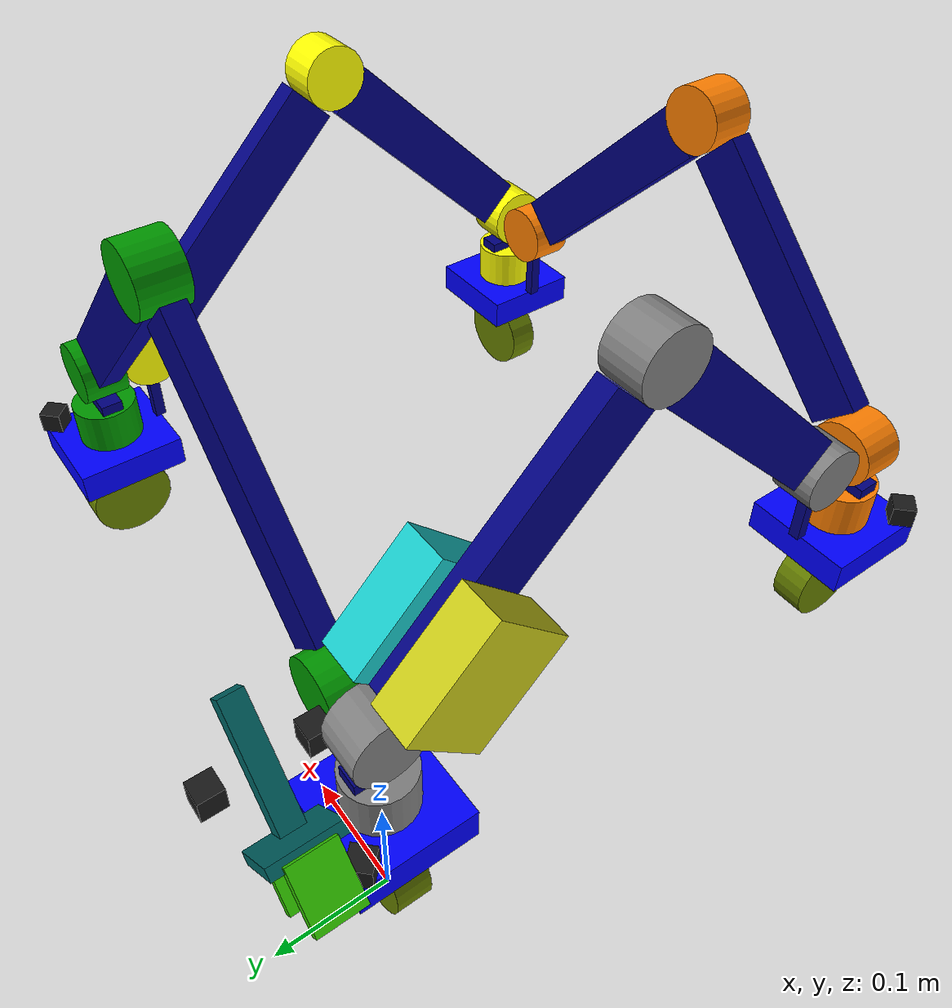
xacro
<?xml version="1.0"?>
<robot xmlns:xacro="http://www.ros.org/wiki/xacro" name="my_robot">
    <xacro:arg name="initial_positions_file" default="initial_positions.yaml" />

    <!-- Import my_robot urdf file -->
    <xacro:include filename="$(find my_robot_description)/urdf/four_arm_robot.xml.xacro" />

    <!-- Import control_xacro -->
    <xacro:include filename="my_robot.ros2_control.xacro" />

    <xacro:my_robot_ros2_control name="FakeSystem" initial_positions_file="$(arg initial_positions_file)"/>

</robot>

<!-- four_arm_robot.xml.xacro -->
<robot name="my_robot" xmlns:xacro="http://www.ros.org/wiki/xacro">

    <xacro:include filename="far_common_properties.xml.xacro" />
    <xacro:include filename="main_arm_units.xml.xacro" />
    <xacro:include filename="mobile_base_part.xml.xacro" />
    <xacro:include filename="branch_arm_unit.xml.xacro" />
    <xacro:include filename="unit_camera.xml.xacro" />
    <xacro:include filename="stereo_camera.xml.xacro" />

    <xacro:include filename="my_robot.ros2_control.xacro" />

    <link name="base_footprint" />

    <joint name="base_joint" type="fixed">
        <parent link="base_footprint" />
        <child link="arm_base_link_1" />
        <origin xyz="0 0 ${wheel_radius*2+veer_height+arm_base_height/2}" rpy="0 0 0" />
    </joint>

    <xacro:macro name="arm_veer_joint" params="prefix">
        <joint name="arm_veer_joint_${prefix}" type="revolute">
            <parent link="arm_base_link_${prefix}" />
            <child link="veer_link_${prefix}" />
            <origin xyz="0 0 -${arm_base_height/2}" rpy="0 0 0" />
            <axis xyz="0 0 1"/>
            <limit lower="${-pi}" upper="${pi}" effort="100" velocity="1.0"/>
            <dynamics friction="0.1" damping="0.1" />
        </joint>
    </xacro:macro>

    <xacro:arm_veer_joint prefix="1" />
    <xacro:arm_veer_joint prefix="2" />
    <xacro:arm_veer_joint prefix="3" />
    <xacro:arm_veer_joint prefix="4" />

    <xacro:macro name="branch_joint" params="prefix">
        <joint name="branch_joint_${prefix}" type="fixed">
            <parent link="arm_part_6_${prefix}" />
            <child link="branch_arm_link_${prefix}" />
            <origin xyz="0 ${arm_link_3_width/2+branch_arm_link_width/2+0.05} ${arm_link_3_height+arm_joint_3_radius}" rpy="0 0 0" />
        </joint>
    </xacro:macro>

    <xacro:branch_joint prefix="4" />

    <xacro:macro name="camera_mount_joint" params="prefix">
        <joint name="camera_joint_${prefix}" type="fixed">
            <parent link="arm_base_link_${prefix}" />
            <child link="camera_link_${prefix}" />
            <origin xyz="-${arm_base_length/2-camera_length/2} ${arm_base_width/2-camera_width/2} ${arm_base_height/2+camera_height/2}" rpy="0 0 ${pi*3.0/4.0}" />
        </joint>
    </xacro:macro>

    <xacro:camera_unit prefix="1" />
    <xacro:camera_mount_joint prefix="1" />

    <xacro:camera_unit prefix="2" />
    <xacro:camera_mount_joint prefix="2" />

    <xacro:camera_unit prefix="3" />
    <xacro:camera_mount_joint prefix="3" />

    <xacro:camera_unit prefix="4" />
    <xacro:camera_mount_joint prefix="4" />

    <gazebo>
        <plugin filename="libgz_ros2_control-system.so" name="gz_ros2_control::GazeboSimROS2ControlPlugin">
            <parameters>$(find my_robot_bringup)/config/ros2_controllers.yaml</parameters>
        </plugin>
        <!-- Publish odom->base_footprint TF so the robot moves in RViz -->
        <plugin filename="gz-sim-odometry-publisher-system" name="gz::sim::systems::OdometryPublisher">
            <odom_frame>odom</odom_frame>
            <robot_base_frame>base_footprint</robot_base_frame>
            <dimensions>2</dimensions>
        </plugin>
    </gazebo>
</robot>

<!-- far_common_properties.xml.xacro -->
<robot  xmlns:xacro="http://www.ros.org/wiki/xacro">
    <material name="link_common_color">
        <color rgba=" 0 0 0.5 1" />
    </material>
    <material name="base_link_color">
        <color rgba=" 0 0 1 1" />
    </material>
    <material name="joint_group_color_1">
        <color rgba="0.5 0.5 0.5 1" />
    </material>

    <material name="joint_group_color_2">
        <color rgba="1 0.5 0 1" />
    </material>

    <material name="joint_group_color_3">
        <color rgba="1 1 0 1" />
    </material>

    <material name="joint_group_color_4">
        <color rgba="0 0.6 0 1" />
    </material>
    <material name="wheel_joint_color">
        <color rgba="0 0.4 0 1" />
    </material>
    <material name="wheel_color">
        <color rgba="0.4 0.5 0 1" />
    </material>
    <material name="branch_link_color">
        <color rgba="0 0.4 0.4 1" />
    </material>
    <material name="gripper_color">
        <color rgba="0.2 0.8 0 1" />
    </material>
    <material name="battery_color">
        <color rgba="0.8 0.8 0.1 1" />
    </material>
    <material name="controller_color">
        <color rgba="0.1 0.8 0.8 1" />
    </material>
    <material name="camera_color">
        <color rgba="0.1 0.1 0.1 1" />
    </material>

    <xacro:property name="battery_length" value="0.08" />
    <xacro:property name="battery_width" value="0.04" />
    <xacro:property name="battery_height" value="0.1" />

    <xacro:property name="controller_length" value="0.08" />
    <xacro:property name="controller_width" value="0.04" />
    <xacro:property name="controller_height" value="0.1" />

    <xacro:property name="arm_base_length" value="0.1" />
    <xacro:property name="arm_base_width" value="0.1" />
    <xacro:property name="arm_base_height" value="0.03" />

    <xacro:property name="veer_length" value="0.04" />
    <xacro:property name="veer_width" value="0.02" />
    <xacro:property name="veer_height" value="0.01" />

    <xacro:property name="wheel_radius" value="0.04" />
    <xacro:property name="wheel_length" value="0.03" />

    <xacro:property name="arm_joint_1_radius" value="0.03" />
    <xacro:property name="arm_joint_1_length" value="0.04" />

    <xacro:property name="arm_link_1_length" value="0.05" />
    <xacro:property name="arm_link_1_width" value="0.02" />
    <xacro:property name="arm_link_1_height" value="0.01" />

    <xacro:property name="arm_joint_2_radius" value="0.03" />
    <xacro:property name="arm_joint_2_length" value="0.04" />

    <xacro:property name="arm_link_2_length" value="0.05" />
    <xacro:property name="arm_link_2_width" value="0.02" />
    <xacro:property name="arm_link_2_height" value="0.25" />

    <xacro:property name="arm_joint_3_radius" value="0.03" />
    <xacro:property name="arm_joint_3_length" value="0.04" />

    <xacro:property name="arm_link_3_length" value="0.05" />
    <xacro:property name="arm_link_3_width" value="0.02" />
    <xacro:property name="arm_link_3_height" value="0.25" />

    <xacro:property name="arm_joint_4_radius" value="0.03" />
    <xacro:property name="arm_joint_4_length" value="0.04" />

    <xacro:property name="branch_arm_link_length" value="0.02" />
    <xacro:property name="branch_arm_link_width" value="0.02" />
    <xacro:property name="branch_arm_link_height" value="0.1" />

    <xacro:property name="branch_cameras_link_length" value="0.1" />
    <xacro:property name="branch_cameras_link_width" value="0.05" />
    <xacro:property name="branch_cameras_link_height" value="0.05" />

    <xacro:property name="branch_camera_link_length" value="0.1" />
    <xacro:property name="branch_camera_link_width" value="0.05" />
    <xacro:property name="branch_camera_link_height" value="0.05" />

    <xacro:property name="connecter_link_length" value="0.06" />
    <xacro:property name="connecter_link_width" value="0.06" />
    <xacro:property name="connecter_link_height" value="0.01" />

    <xacro:property name="gripper_link_length" value="0.01" />
    <xacro:property name="gripper_link_width" value="0.04" />
    <xacro:property name="gripper_link_height" value="0.05" />

     <xacro:property name="camera_length" value="0.02" />
     <xacro:property name="camera_width" value="0.02" />
     <xacro:property name="camera_height" value="0.02" />
     <xacro:property name="camera_mass" value="0.02" />
     <xacro:property name="camera_optical_size" value="0.005" />

    <xacro:macro name="box_inertia" params="m x y z o_xyz o_rpy">
        <inertial>
            <mass value="${m}" />
            <origin xyz="${o_xyz}" rpy="${o_rpy}" />
            <inertia ixx="${(m)/12 *(y*y + z*z)}" ixy="0" ixz="0"
                    iyy="${(m)/12 *(x*x + z*z)}" iyz="0"
                    izz="${(m)/12 *(x*x + y*y)}" />
        </inertial>
    </xacro:macro>

    <xacro:macro name="cylinder_inertia" params="m r l o_xyz o_rpy">
        <inertial>
            <mass value="${m}" />
            <origin xyz="${o_xyz}" rpy="${o_rpy}" />
            <inertia ixx="${(m)/12 *(3*r*r + l*l)}" ixy="0" ixz="0"
                    iyy="${(m)/12 *(3*r*r + l*l)}" iyz="0"
                    izz="${(m)/2 *(r*r)}" />
        </inertial>
    </xacro:macro>

    <xacro:macro name="caster_inertia" params="m r o_xyz o_rpy">
        <inertial>
            <mass value="${m}" />
            <origin xyz="${o_xyz}" rpy="${o_rpy}" />
            <inertia ixx="${(2*m/5) *(r*r)}" ixy="0" ixz="0"
                    iyy="${(2*m/5) *(r*r)}" iyz="0"
                    izz="${(2*m/5) *(r*r)}" />
        </inertial>
    </xacro:macro>
</robot>

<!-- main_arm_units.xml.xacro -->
<robot xmlns:xacro="http://www.ros.org/wiki/xacro">
    <xacro:macro name="arm_base_link" params="prefix">
        <link name="arm_base_link_${prefix}">
            <visual>
                <geometry>
                    <box size="${arm_base_length} ${arm_base_width} ${arm_base_height}" />
                </geometry>
                <origin xyz="0 0 0" rpy="0 0 0" />
                <material name="base_link_color" />
            </visual>
            <collision>
                <geometry>
                    <box size="${arm_base_length} ${arm_base_width} ${arm_base_height}" />
                </geometry>
                <origin xyz="0 0 0" rpy="0 0 0" />
            </collision>
            <xacro:box_inertia m="0.5" x="${arm_base_length}" y="${arm_base_width}" z="${arm_base_height}"
                            o_xyz="0 0 0" o_rpy="0 0 0" />
        </link>
    </xacro:macro>

    <xacro:macro name="arm_part_1" params="prefix">
        <link name="arm_part_1_${prefix}">
            <visual>
                <geometry>
                    <cylinder radius="${arm_joint_1_radius}" length="${arm_joint_1_length}" />
                </geometry>
                <origin xyz="0 0 ${arm_joint_1_length/2}" rpy="0 0 0" />
                <material name="joint_group_color_${prefix}" />
            </visual>
            <collision>
                <geometry>
                    <cylinder radius="${arm_joint_1_radius}" length="${arm_joint_1_length}" />
                </geometry>
                <origin xyz="0 0 ${arm_joint_1_length/2}" rpy="0 0 0" />
            </collision>
            <xacro:cylinder_inertia m="2.0" r="${arm_joint_1_radius}" l="${arm_joint_1_length}"
                                o_xyz="0 0 ${arm_joint_1_length/2}" o_rpy="0 0 0"/>
        </link>
    </xacro:macro>

    <xacro:macro name="arm_part_2" params="prefix">
        <link name="arm_part_2_${prefix}">
            <visual>
                <geometry>
                    <box size="${arm_link_1_length} ${arm_link_1_width} ${arm_link_1_height}" />
                </geometry>
                <origin xyz="0 0 ${arm_link_1_height/2}" rpy="0 0 0" />
                <material name="link_common_color" />
            </visual>
            <collision>
                <geometry>
                    <box size="${arm_link_1_length} ${arm_link_1_width} ${arm_link_1_height}" />
                </geometry>
                <origin xyz="0 0 ${arm_link_1_height/2}" rpy="0 0 0" />
            </collision>
            <xacro:box_inertia m="0.5" x="${arm_link_1_length}" y="${arm_link_1_width}" z="${arm_link_1_height}"
                            o_xyz="0 0 ${arm_link_1_height/2}" o_rpy="0 0 0" />
        </link>
    </xacro:macro>

    <xacro:macro name="arm_part_3" params="prefix">
        <link name="arm_part_3_${prefix}">
            <visual>
                <geometry>
                    <cylinder radius="${arm_joint_2_radius}" length="${arm_joint_2_length}" />
                </geometry>
                <origin xyz="0 0 0" rpy="${pi / 2.0} 0 0" />
                <material name="joint_group_color_${prefix}" />
            </visual>
            <collision>
                <geometry>
                    <cylinder radius="${arm_joint_2_radius}" length="${arm_joint_2_length}" />
                </geometry>
                <origin xyz="0 0 0" rpy="${pi / 2.0} 0 0" />
            </collision>
            <xacro:cylinder_inertia m="2.0" r="${arm_joint_2_radius}" l="${arm_joint_2_length}"
                                o_xyz="0 0 0" o_rpy="${pi / 2.0} 0 0"/>
        </link>
    </xacro:macro>

    <xacro:macro name="arm_part_4" params="prefix">
        <link name="arm_part_4_${prefix}">
            <visual>
                <geometry>
                    <box size="${arm_link_2_length} ${arm_link_2_width} ${arm_link_2_height}" />
                </geometry>
                <origin xyz="0 0 ${arm_link_2_height/2+arm_joint_2_radius}" rpy="0 0 0" />
                <material name="link_common_color" />
            </visual>
            <collision>
                <geometry>
                    <box size="${arm_link_2_length} ${arm_link_2_width} ${arm_link_2_height}" />
                </geometry>
                <origin xyz="0 0 ${arm_link_2_height/2+arm_joint_2_radius}" rpy="0 0 0" />
            </collision>
            <xacro:box_inertia m="1.0" x="${arm_link_2_length}" y="${arm_link_2_width}" z="${arm_link_2_height}"
                            o_xyz="0 0 ${arm_link_2_height/2+arm_joint_2_radius}" o_rpy="0 0 0" />
        </link>
    </xacro:macro>

    <xacro:macro name="arm_part_5" params="prefix">
        <link name="arm_part_5_${prefix}">
            <visual>
                <geometry>
                    <cylinder radius="${arm_joint_3_radius}" length="${arm_joint_3_length}" />
                </geometry>
                <origin xyz="0 0 0" rpy="${pi / 2.0} 0 0" />
                <material name="joint_group_color_${prefix}" />
            </visual>
            <collision>
                <geometry>
                    <cylinder radius="${arm_joint_3_radius}" length="${arm_joint_3_length}" />
                </geometry>
                <origin xyz="0 0 0" rpy="${pi / 2.0} 0 0" />
            </collision>
            <xacro:cylinder_inertia m="2.0" r="${arm_joint_3_radius}" l="${arm_joint_3_length}"
                                o_xyz="0 0 0" o_rpy="${pi / 2.0} 0 0"/>
        </link>
    </xacro:macro>

    <xacro:macro name="arm_part_6" params="prefix">
        <link name="arm_part_6_${prefix}">
            <visual>
                <geometry>
                    <box size="${arm_link_3_length} ${arm_link_3_width} ${arm_link_3_height}" />
                </geometry>
                <origin xyz="0 0 ${arm_link_3_height/2+arm_joint_3_radius}" rpy="0 0 0" />
                <material name="link_common_color" />
            </visual>
            <collision>
                <geometry>
                    <box size="${arm_link_3_length} ${arm_link_3_width} ${arm_link_3_height}" />
                </geometry>
                <origin xyz="0 0 ${arm_link_3_height/2+arm_joint_3_radius}" rpy="0 0 0" />
            </collision>
            <xacro:box_inertia m="1.0" x="${arm_link_3_length}" y="${arm_link_3_width}" z="${arm_link_3_height}"
                            o_xyz="0 0 ${arm_link_3_height/2+arm_joint_3_radius}" o_rpy="0 0 0" />
        </link>
    </xacro:macro>

    <xacro:macro name="arm_part_7" params="prefix">
        <link name="arm_part_7_${prefix}">
            <visual>
                <geometry>
                    <cylinder radius="${arm_joint_4_radius}" length="${arm_joint_4_length}" />
                </geometry>
                <origin xyz="0 0 0" rpy="${pi / 2.0} 0 0" />
                <material name="joint_group_color_${prefix}" />
            </visual>
            <collision>
                <geometry>
                    <cylinder radius="${arm_joint_4_radius}" length="${arm_joint_4_length}" />
                </geometry>
                <origin xyz="0 0 0" rpy="${pi / 2.0} 0 0" />
            </collision>
            <xacro:cylinder_inertia m="2.0" r="${arm_joint_4_radius}" l="${arm_joint_4_length}"
                                o_xyz="0 0 0" o_rpy="${pi / 2.0} 0 0"/>
        </link>
    </xacro:macro>

    <xacro:macro name="arm_part_8" params="prefix">
        <link name="arm_part_8_${prefix}">
            <visual>
                <geometry>
                    <box size="${0.01} ${0.01} ${arm_joint_2_radius+arm_link_1_height+arm_joint_1_length}" />
                </geometry>
                <origin xyz="0 0 ${arm_joint_2_radius/2+arm_link_1_height/2+arm_joint_1_length/2}" rpy="0 0 0" />
                <material name="link_common_color" />
            </visual>
            <collision>
                <geometry>
                    <box size="${0.01} ${0.01} ${arm_joint_2_radius+arm_link_1_height+arm_joint_1_length}" />
                </geometry>
                <origin xyz="0 0 ${arm_joint_2_radius/2+arm_link_1_height/2+arm_joint_1_length/2}" rpy="0 0 0" />
            </collision>
            <xacro:box_inertia m="0.1" x="0.01" y="0.01" z="${arm_joint_2_radius+arm_link_1_height+arm_joint_1_length}"
                            o_xyz="0 0 ${arm_joint_2_radius/2+arm_link_1_height/2+arm_joint_1_length/2}" o_rpy="0 0 0" />
        </link>
    </xacro:macro>

    <xacro:arm_base_link prefix="1" />
    <xacro:arm_part_1 prefix="1" />
    <xacro:arm_part_2 prefix="1" />
    <xacro:arm_part_3 prefix="1" />
    <xacro:arm_part_4 prefix="1" />
    <xacro:arm_part_5 prefix="1" />
    <xacro:arm_part_6 prefix="1" />
    <xacro:arm_part_7 prefix="1" />
    <xacro:arm_part_8 prefix="1" />

    <xacro:arm_base_link prefix="2" />
    <xacro:arm_part_1 prefix="2" />
    <xacro:arm_part_2 prefix="2" />
    <xacro:arm_part_3 prefix="2" />
    <xacro:arm_part_4 prefix="2" />
    <xacro:arm_part_5 prefix="2" />
    <xacro:arm_part_6 prefix="2" />
    <xacro:arm_part_7 prefix="2" />
    <xacro:arm_part_8 prefix="2" />

    <xacro:arm_base_link prefix="3" />
    <xacro:arm_part_1 prefix="3" />
    <xacro:arm_part_2 prefix="3" />
    <xacro:arm_part_3 prefix="3" />
    <xacro:arm_part_4 prefix="3" />
    <xacro:arm_part_5 prefix="3" />
    <xacro:arm_part_6 prefix="3" />
    <xacro:arm_part_7 prefix="3" />
    <xacro:arm_part_8 prefix="3" />

    <xacro:arm_base_link prefix="4" />
    <xacro:arm_part_1 prefix="4" />
    <xacro:arm_part_2 prefix="4" />
    <xacro:arm_part_3 prefix="4" />
    <xacro:arm_part_4 prefix="4" />
    <xacro:arm_part_5 prefix="4" />
    <xacro:arm_part_6 prefix="4" />
    <xacro:arm_part_7 prefix="4" />
    <xacro:arm_part_8 prefix="4" />

    <xacro:macro name="arm_joint_1" params="prefix">
        <joint name="arm_joint_1_${prefix}" type="revolute">
            <parent link="arm_base_link_${prefix}" />
            <child link="arm_part_1_${prefix}" />
            <origin xyz="0 0 ${arm_base_height/2}" rpy="0 0 ${pi / 2.0}" />
            <axis xyz="0 0 1" />
            <limit lower="-3.14" upper="3.14" effort="100" velocity="100" />
            <dynamics friction="0.1" damping="0.1" />
        </joint>
    </xacro:macro>

    <xacro:macro name="arm_joint_2" params="prefix">
        <joint name="arm_joint_2_${prefix}" type="fixed">
            <parent link="arm_part_1_${prefix}" />
            <child link="arm_part_2_${prefix}" />
            <origin xyz="0 0 ${arm_joint_1_length}" rpy="0 0 0" />
        </joint>
    </xacro:macro>

    <xacro:macro name="arm_joint_3" params="prefix">
        <joint name="arm_joint_3_${prefix}" type="revolute">
            <parent link="arm_part_2_${prefix}" />
            <child link="arm_part_3_${prefix}" />
            <origin xyz="0 0 ${arm_link_1_height+arm_joint_2_radius}" rpy="0 -${pi / 4.0} 0" />
            <axis xyz="0 1 0" />
            <limit lower="-2.35" upper="2.35" effort="100" velocity="100" />
            <dynamics friction="0.1" damping="0.1" />
        </joint>
    </xacro:macro>

    <xacro:macro name="arm_joint_4" params="prefix">
        <joint name="arm_joint_4_${prefix}" type="fixed">
            <parent link="arm_part_3_${prefix}" />
            <child link="arm_part_4_${prefix}" />
            <origin xyz="0 0 0" rpy="0 0 0" />
        </joint>
    </xacro:macro>

    <xacro:macro name="arm_joint_5" params="prefix">
        <joint name="arm_joint_5_${prefix}" type="revolute">
            <parent link="arm_part_4_${prefix}" />
            <child link="arm_part_5_${prefix}" />
            <origin xyz="0 0 ${arm_link_2_height+arm_joint_2_radius+arm_joint_3_radius}" rpy="0 -${pi / 2.0} 0" />
            <axis xyz="0 1 0" />
            <limit lower="-2.35" upper="2.35" effort="100" velocity="100" />
            <dynamics friction="0.1" damping="0.1" />
        </joint>
    </xacro:macro>

    <xacro:macro name="arm_joint_6" params="prefix">
        <joint name="arm_joint_6_${prefix}" type="fixed">
            <parent link="arm_part_5_${prefix}" />
            <child link="arm_part_6_${prefix}" />
            <origin xyz="0 0 0" rpy="0 0 0" />
        </joint>
    </xacro:macro>

    <xacro:macro name="arm_joint_7" params="prefix">
        <joint name="arm_joint_7_${prefix}" type="revolute">
            <parent link="arm_part_6_${prefix}" />
            <child link="arm_part_7_${prefix}" />
            <origin xyz="0 0 ${arm_link_2_height+arm_joint_2_radius+arm_joint_1_radius}" rpy="0 -${pi / 4.0} 0" />
            <axis xyz="0 1 0" />
            <limit lower="-2.35" upper="2.35" effort="100" velocity="100" />
            <dynamics friction="0.1" damping="0.1" />
        </joint>
    </xacro:macro>

    <xacro:macro name="arm_joint_8" params="prefix">
        <joint name="arm_joint_8_${prefix}" type="fixed">
            <parent link="arm_part_7_${prefix}" />
            <child link="arm_part_8_${prefix}" />
            <origin xyz="0 0 0" rpy="0 0 0" />
        </joint>
    </xacro:macro>

    <xacro:macro name="group_joint" params="prefix">
        <joint name="group_joint_${prefix}" type="fixed">
            <parent link="arm_part_7_${prefix-1}" />
            <child link="arm_base_link_${prefix}" />
            <origin xyz="${arm_base_length/2} 0 ${arm_joint_2_radius+arm_link_1_height+arm_joint_1_length+arm_base_height/2}" rpy="0 ${pi} 0" />
        </joint>
    </xacro:macro>

    <xacro:arm_joint_1 prefix="1" />
    <xacro:arm_joint_2 prefix="1" />
    <xacro:arm_joint_3 prefix="1" />
    <xacro:arm_joint_4 prefix="1" />
    <xacro:arm_joint_5 prefix="1" />
    <xacro:arm_joint_6 prefix="1" />
    <xacro:arm_joint_7 prefix="1" />
    <xacro:arm_joint_8 prefix="1" />

    <xacro:group_joint prefix="2" />
    <xacro:arm_joint_1 prefix="2" />
    <xacro:arm_joint_2 prefix="2" />
    <xacro:arm_joint_3 prefix="2" />
    <xacro:arm_joint_4 prefix="2" />
    <xacro:arm_joint_5 prefix="2" />
    <xacro:arm_joint_6 prefix="2" />
    <xacro:arm_joint_7 prefix="2" />
    <xacro:arm_joint_8 prefix="2" />

    <xacro:group_joint prefix="3" />
    <xacro:arm_joint_1 prefix="3" />
    <xacro:arm_joint_2 prefix="3" />
    <xacro:arm_joint_3 prefix="3" />
    <xacro:arm_joint_4 prefix="3" />
    <xacro:arm_joint_5 prefix="3" />
    <xacro:arm_joint_6 prefix="3" />
    <xacro:arm_joint_7 prefix="3" />
    <xacro:arm_joint_8 prefix="3" />

    <xacro:group_joint prefix="4" />
    <xacro:arm_joint_1 prefix="4" />
    <xacro:arm_joint_2 prefix="4" />
    <xacro:arm_joint_3 prefix="4" />
    <xacro:arm_joint_4 prefix="4" />
    <xacro:arm_joint_5 prefix="4" />
    <xacro:arm_joint_6 prefix="4" />
    <xacro:arm_joint_7 prefix="4" />
    <xacro:arm_joint_8 prefix="4" />

    <xacro:macro name="battery_link" params="prefix">
        <link name="battery_link_${prefix}">
            <visual>
                <geometry>
                    <box size="${battery_length} ${battery_width} ${battery_height}" />
                </geometry>
                <origin xyz="0 0 ${battery_height/2+arm_joint_2_radius}" rpy="0 0 0" />
                <material name="battery_color" />
            </visual>
            <collision>
                <geometry>
                    <box size="${battery_length} ${battery_width} ${battery_height}" />
                </geometry>
                <origin xyz="0 0 ${battery_height/2+arm_joint_2_radius}" rpy="0 0 0" />
            </collision>
            <xacro:box_inertia m="2.0" x="${battery_length}" y="${battery_width}" z="${battery_height}"
                            o_xyz="0 0 ${arm_link_2_height/2+arm_joint_2_radius}" o_rpy="0 0 0" />
        </link>
    </xacro:macro>

    <xacro:macro name="controller_link" params="prefix">
        <link name="controller_link_${prefix}">
            <visual>
                <geometry>
                    <box size="${controller_length} ${controller_width} ${controller_height}" />
                </geometry>
                <origin xyz="0 0 ${controller_height/2+arm_joint_2_radius}" rpy="0 0 0" />
                <material name="controller_color" />
            </visual>
            <collision>
                <geometry>
                    <box size="${controller_length} ${controller_width} ${controller_height}" />
                </geometry>
                <origin xyz="0 0 ${controller_height/2+arm_joint_2_radius}" rpy="0 0 0" />
            </collision>
            <xacro:box_inertia m="2.0" x="${controller_length}" y="${controller_width}" z="${controller_height}"
                            o_xyz="0 0 ${arm_link_2_height/2+arm_joint_2_radius}" o_rpy="0 0 0" />
        </link>
    </xacro:macro>

    <xacro:battery_link prefix="1" />
    <xacro:controller_link prefix="1" />

    <xacro:macro name="battery_joint" params="prefix">
        <joint name="battery_joint_${prefix}" type="fixed">
            <parent link="arm_part_4_${prefix}" />
            <child link="battery_link_${prefix}" />
            <origin xyz="0 ${arm_link_2_width/2+battery_width/2} 0" rpy="0 0 0" />
        </joint>
    </xacro:macro>

    <xacro:macro name="controller_joint" params="prefix">
        <joint name="controller_joint_${prefix}" type="fixed">
            <parent link="arm_part_4_${prefix}" />
            <child link="controller_link_${prefix}" />
            <origin xyz="0 -${arm_link_2_width/2+controller_width/2} 0" rpy="0 0 0" />
        </joint>
    </xacro:macro>

    <xacro:battery_joint prefix="1" />
    <xacro:controller_joint prefix="1" />

</robot>

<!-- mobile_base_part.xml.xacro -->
<robot xmlns:xacro="http://www.ros.org/wiki/xacro">
    <xacro:macro name="veer_link" params="prefix">
        <link name="veer_link_${prefix}" >
            <visual>
                <geometry>
                    <box size="${veer_length} ${veer_width} ${veer_height}" />
                </geometry>
                <origin xyz="0 0 -${veer_height/2}" rpy="0 0 0" />
                <material name="wheel_joint_color" />
            </visual>
            <collision>
                <geometry>
                    <box size="${veer_length} ${veer_width} ${veer_height}" />
                </geometry>
                <origin xyz="0 0 -${veer_height/2}" rpy="0 0 0" />
            </collision>
            <xacro:box_inertia m="2.0" x="${veer_length}" y="${veer_width}" z="${veer_height}"
                            o_xyz="0 0 0" o_rpy="0 0 0" />
        </link>
    </xacro:macro>

    <xacro:macro name="wheel_link" params="prefix">
        <link name="wheel_link_${prefix}">
            <visual>
                <geometry>
                    <cylinder radius="${wheel_radius}" length="${wheel_length}" />
                </geometry>
                <origin xyz="0 0 0" rpy="${pi / 2.0} 0 0" />
                <material name="wheel_color" />
            </visual>
            <collision>
                <geometry>
                    <cylinder radius="${wheel_radius}" length="${wheel_length}" />
                </geometry>
                <origin xyz="0 0 0" rpy="${pi / 2.0} 0 0" />
            </collision>
            <xacro:cylinder_inertia m="1.0" r="${wheel_radius}" l="${wheel_length}"
                    o_xyz="0 0 0" o_rpy="${pi / 2.0} 0 0"/>
        </link>
    </xacro:macro>

    <xacro:veer_link prefix="1" />
    <xacro:wheel_link prefix="1" />

    <xacro:veer_link prefix="2" />
    <xacro:wheel_link prefix="2" />

    <xacro:veer_link prefix="3" />
    <xacro:wheel_link prefix="3" />

    <xacro:veer_link prefix="4" />
    <xacro:wheel_link prefix="4" />

    <xacro:macro name="wheel_joint" params="prefix">
        <joint name="wheel_joint_${prefix}" type="continuous">
            <parent link="veer_link_${prefix}" />
            <child link="wheel_link_${prefix}" />
            <origin xyz="0 0 -${wheel_radius+veer_height}" rpy="0 0 0" />
            <axis xyz="0 1 0" />
        </joint>
    </xacro:macro>

    <xacro:wheel_joint prefix="1" />
    <xacro:wheel_joint prefix="2" />
    <xacro:wheel_joint prefix="3" />
    <xacro:wheel_joint prefix="4" />
</robot>

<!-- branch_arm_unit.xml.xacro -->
<robot xmlns:xacro="http://www.ros.org/wiki/xacro">

    <xacro:macro name="branch_arm_link" params="prefix">
        <link name="branch_arm_link_${prefix}">
            <visual>
                <geometry>
                    <box size="${branch_arm_link_length} ${branch_arm_link_width} ${branch_arm_link_height}" />
                </geometry>
                <origin xyz="0 0 ${branch_arm_link_height/2}" rpy="0 0 0" />
                <material name="branch_link_color" />
            </visual>
            <collision>
                <geometry>
                    <box size="${branch_arm_link_length} ${branch_arm_link_width} ${branch_arm_link_height}" />
                </geometry>
                <origin xyz="0 0 ${branch_arm_link_height/2}" rpy="0 0 0" />
            </collision>
            <xacro:box_inertia m="0.5" x="${branch_arm_link_length}" y="${branch_arm_link_width}" z="${branch_arm_link_height}"
                            o_xyz="0 0 ${branch_arm_link_height/2}" o_rpy="0 0 0" />
        </link>
    </xacro:macro>

    <xacro:macro name="branch_connecter" params="prefix">
        <link name="branch_connecter_${prefix}">
            <visual>
                <geometry>
                    <box size="${connecter_link_length} ${connecter_link_width} ${connecter_link_height}" />
                </geometry>
                <origin xyz="0 0 ${connecter_link_height/2}" rpy="0 0 0" />
                <material name="branch_link_color" />
            </visual>
            <collision>
                <geometry>
                    <box size="${connecter_link_length} ${connecter_link_width} ${connecter_link_height}" />
                </geometry>
                <origin xyz="0 0 ${connecter_link_height/2}" rpy="0 0 0" />
            </collision>
            <xacro:box_inertia m="0.5" x="${connecter_link_length}" y="${connecter_link_width}" z="${connecter_link_height}"
                            o_xyz="0 0 ${connecter_link_height/2}" o_rpy="0 0 0" />
        </link>
    </xacro:macro>

    <xacro:macro name="camera_connecter" params="prefix">
        <link name="camera_connecter_${prefix}">
            <visual>
                <geometry>
                    <box size="${connecter_link_length} ${connecter_link_width} ${connecter_link_height}" />
                </geometry>
                <origin xyz="0 0 ${connecter_link_height/2}" rpy="0 0 0" />
                <material name="branch_link_color" />
            </visual>
            <collision>
                <geometry>
                    <box size="${connecter_link_length} ${connecter_link_width} ${connecter_link_height}" />
                </geometry>
                <origin xyz="0 0 ${connecter_link_height/2}" rpy="0 0 0" />
            </collision>
            <xacro:box_inertia m="0.5" x="${connecter_link_length}" y="${connecter_link_width}" z="${connecter_link_height}"
                            o_xyz="0 0 ${connecter_link_height/2}" o_rpy="0 0 0" />
        </link>
    </xacro:macro>

    <xacro:branch_arm_link prefix="4" />
    <xacro:branch_connecter prefix="4" />

    <xacro:macro name="branch_connect_joint" params="prefix">
        <joint name="branch_connect_joint_${prefix}" type="fixed">
            <parent link="branch_arm_link_${prefix}" />
            <child link="branch_connecter_${prefix}" />
            <origin xyz="0 0 ${branch_arm_link_height+connecter_link_height/2}" rpy="0 0 0" />
        </joint>
    </xacro:macro>

    <xacro:branch_connect_joint prefix="4" />

    <link name="gripper_left_finger_link">
        <inertial>
            <origin rpy="0 0 0" xyz="0 0 ${gripper_link_height/2}"/>
            <mass value="0.05"/>
            <inertia ixx="4.167e-05" ixy="0.0" ixz="0.0" iyy="2.833e-05" iyz="0.0" izz="1.667e-05"/>
        </inertial>
        <visual>
            <geometry>
                <box size="${gripper_link_length} ${gripper_link_width} ${gripper_link_height}"/>
            </geometry>
            <origin rpy="0 0 0" xyz="0 0 ${gripper_link_height/2}"/>
            <material name="gripper_color"/>
        </visual>
        <collision>
            <geometry>
                <box size="${gripper_link_length} ${gripper_link_width} ${gripper_link_height}"/>
            </geometry>
            <origin rpy="0 0 0" xyz="0 0 ${gripper_link_height/2}"/>
        </collision>
    </link>

    <link name="gripper_right_finger_link">
        <inertial>
            <origin rpy="0 0 0" xyz="0 0 ${gripper_link_height/2}"/>
            <mass value="0.05"/>
            <inertia ixx="4.167e-05" ixy="0.0" ixz="0.0" iyy="2.833e-05" iyz="0.0" izz="1.667e-05"/>
        </inertial>
        <visual>
            <geometry>
                <box size="${gripper_link_length} ${gripper_link_width} ${gripper_link_height}"/>
            </geometry>
            <origin rpy="0 0 0" xyz="0 0 ${gripper_link_height/2}"/>
            <material name="gripper_color"/>
        </visual>
        <collision>
            <geometry>
                <box size="${gripper_link_length} ${gripper_link_width} ${gripper_link_height}"/>
            </geometry>
            <origin rpy="0 0 0" xyz="0 0 ${gripper_link_height/2}"/>
        </collision>
    </link>

    <joint name="gripper_left_finger_joint" type="prismatic">
        <parent link="branch_connecter_4"/>
        <child link="gripper_left_finger_link"/>
        <origin rpy="0 0 0" xyz="-${connecter_link_length/2} 0 ${connecter_link_height/2}"/>
        <axis xyz="1 0 0"/>
        <limit lower="0.0" upper="0.06" effort="1000.0" velocity="1.0"/>
    </joint>

    <joint name="gripper_right_finger_joint" type="prismatic">
        <parent link="branch_connecter_4"/>
        <child link="gripper_right_finger_link"/>
        <origin rpy="0 0 0" xyz="${connecter_link_length/2} 0 ${connecter_link_height/2}"/>
        <axis xyz="1 0 0"/>
        <mimic joint="gripper_left_finger_joint" multiplier="-1.0"/>
        <limit lower="-0.06" upper="0.00" effort="1000.0" velocity="1.0"/>
    </joint>
</robot>

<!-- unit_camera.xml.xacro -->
<robot xmlns:xacro="http://www.ros.org/wiki/xacro">

    <xacro:macro name="camera_unit" params="prefix">
        <link name="camera_link_${prefix}">
            <visual>
                <geometry>
                    <box size="${camera_length} ${camera_width} ${camera_height}" />
                </geometry>
                <origin xyz="0 0 0" rpy="0 0 0" />
                <material name="camera_color" />
            </visual>
            <collision>
                <geometry>
                    <box size="${camera_length} ${camera_width} ${camera_height}" />
                </geometry>
                <origin xyz="0 0 0" rpy="0 0 0" />
            </collision>
            <xacro:box_inertia m="${camera_mass}" x="${camera_length}" y="${camera_width}" z="${camera_height}"
                            o_xyz="0 0 0" o_rpy="0 0 0" />
        </link>

        <link name="camera_optical_link_${prefix}">
            <visual>
                <geometry>
                    <box size="${camera_optical_size} ${camera_optical_size} ${camera_optical_size}" />
                </geometry>
                <origin xyz="0 0 0" rpy="0 0 0" />
                <material name="camera_color" />
            </visual>
        </link>

        <joint name="camera_optical_joint_${prefix}" type="fixed">
            <parent link="camera_link_${prefix}" />
            <child link="camera_optical_link_${prefix}" />
            <origin xyz="0 0 0" rpy="-1.570796 0 -1.570796" />
        </joint>

        <gazebo reference="camera_link_${prefix}">
            <sensor name="camera_${prefix}" type="camera">
                <camera>
                    <horizontal_fov>2.0944</horizontal_fov>
                    <image>
                        <width>640</width>
                        <height>480</height>
                        <format>R8G8B8</format>
                    </image>
                    <clip>
                        <near>0.1</near>
                        <far>16.0</far>
                    </clip>
                    <noise>
                        <type>gaussian</type>
                        <mean>0.0</mean>
                        <stddev>0.007</stddev>
                    </noise>
                    <optical_frame_id>camera_optical_link_${prefix}</optical_frame_id>
                    <camera_info_topic>camera_${prefix}/camera_info</camera_info_topic>
                </camera>
                <always_on>1</always_on>
                <update_rate>5</update_rate>
                <visualize>true</visualize>
                <topic>camera_${prefix}/image_raw</topic>
            </sensor>
        </gazebo>
    </xacro:macro>

</robot>

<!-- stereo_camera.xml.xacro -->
<robot  xmlns:xacro="http://www.ros.org/wiki/xacro">
    <link name="camera_link_5">
        <visual>
            <geometry>
                <box size="${camera_length} ${camera_width} ${camera_height}" />
            </geometry>
            <material name="camera_color" />
        </visual>
        <collision>
            <geometry>
                <box size="${camera_length} ${camera_width} ${camera_height}" />
            </geometry>
        </collision>
        <xacro:box_inertia m="0.1" x="${camera_length}" y="${camera_width}" z="${camera_height}"
                            o_xyz="0 0 0" o_rpy="0 0 0" />
    </link>
    <link name="camera_link_6">
        <visual>
            <geometry>
                <box size="${camera_length} ${camera_width} ${camera_height}" />
            </geometry>
            <material name="camera_color" />
        </visual>
        <collision>
            <geometry>
                <box size="${camera_length} ${camera_width} ${camera_height}" />
            </geometry>
        </collision>
        <xacro:box_inertia m="0.1" x="${camera_length}" y="${camera_width}" z="${camera_height}"
                            o_xyz="0 0 0" o_rpy="0 0 0" />
    </link>

    <joint name="base_camera_joint_5" type="fixed">
        <parent link="branch_arm_link_4" />
        <child link="camera_link_5" />
        <origin xyz="${(branch_arm_link_length)/2.0} ${branch_arm_link_width*2} ${branch_arm_link_height/2.0}" rpy="${pi} ${-pi/4.0} 0" />
    </joint>
    <joint name="base_camera_joint_6" type="fixed">
        <parent link="branch_arm_link_4" />
        <child link="camera_link_6" />
        <origin xyz="${(branch_arm_link_length)/2.0} ${-branch_arm_link_width*2} ${branch_arm_link_height/2.0}" rpy="${pi} ${-pi/4.0} 0" />
    </joint>

    <link name="camera_link_optical_5" />
    <joint name="camera_optical_joint_5" type="fixed">
        <origin xyz="0 0 0" rpy="${-pi/2} 0 ${-pi/2}" />
        <parent link="camera_link_5" />
        <child link="camera_link_optical_5" />
    </joint>
    <link name="camera_link_optical_6" />
    <joint name="camera_optical_joint_6" type="fixed">
        <origin xyz="0 0 0" rpy="${-pi/2} 0 ${-pi/2}" />
        <parent link="camera_link_6" />
        <child link="camera_link_optical_6" />
    </joint>

    <gazebo reference="camera_link_5">
        <sensor name="camera_5" type="camera">
            <camera>
                <horizontal_fov>1.3962634</horizontal_fov>
                <image>
                    <width>640</width>
                    <height>480</height>
                    <format>R8G8B8</format>
                </image>
                <clip>
                    <near>0.1</near>
                    <far>15</far>
                </clip>
                <noise>
                    <type>gaussian</type>
                    <mean>0.0</mean>
                    <stddev>0.007</stddev>
                </noise>
                <optical_frame_id>camera_link_optical_5</optical_frame_id>
                <camera_info_topic>camera_5/camera_info</camera_info_topic>
            </camera>
            <always_on>1</always_on>
            <update_rate>5</update_rate>
            <visualize>true</visualize>
            <topic>camera_5/image_raw</topic>
        </sensor>
    </gazebo>
    <gazebo reference="camera_link_6">
        <sensor name="camera_6" type="camera">
            <camera>
                <horizontal_fov>1.3962634</horizontal_fov>
                <image>
                    <width>640</width>
                    <height>480</height>
                    <format>R8G8B8</format>
                </image>
                <clip>
                    <near>0.1</near>
                    <far>15</far>
                </clip>
                <noise>
                    <type>gaussian</type>
                    <mean>0.0</mean>
                    <stddev>0.007</stddev>
                </noise>
                <optical_frame_id>camera_link_optical_6</optical_frame_id>
                <camera_info_topic>camera_6/camera_info</camera_info_topic>
            </camera>
            <always_on>1</always_on>
            <update_rate>5</update_rate>
            <visualize>true</visualize>
            <topic>camera_6/image_raw</topic>
        </sensor>
    </gazebo>
</robot>
